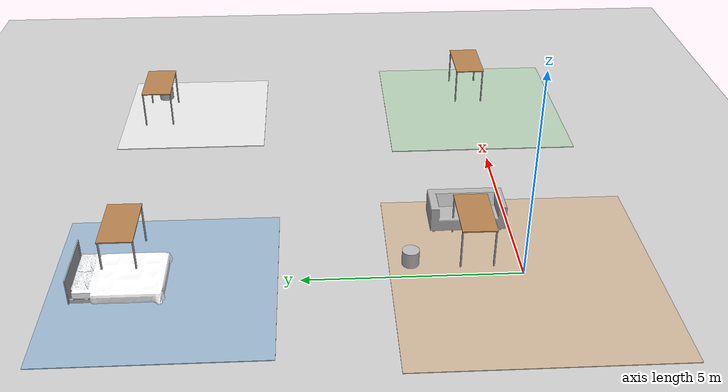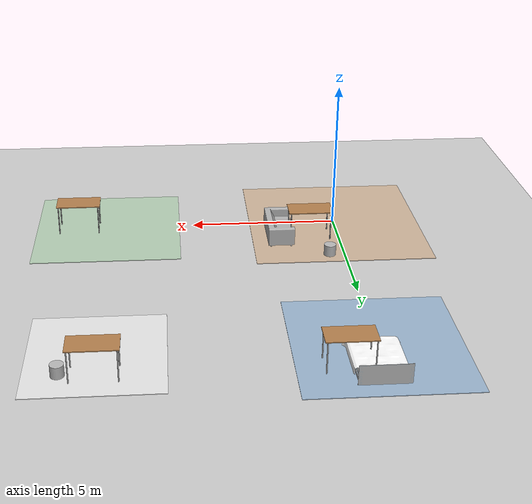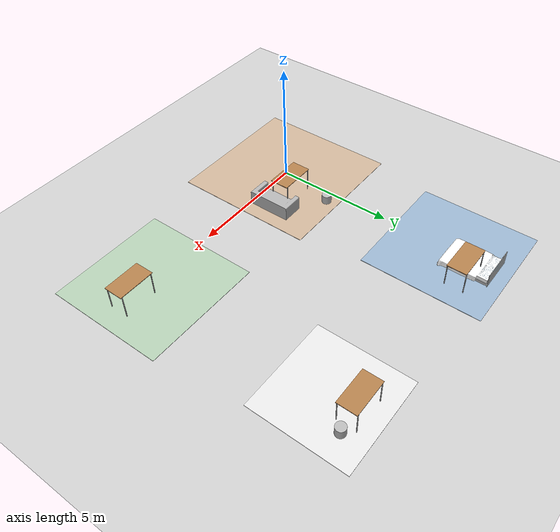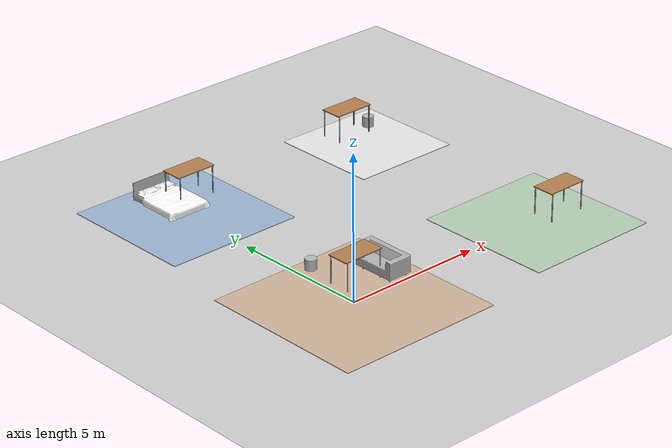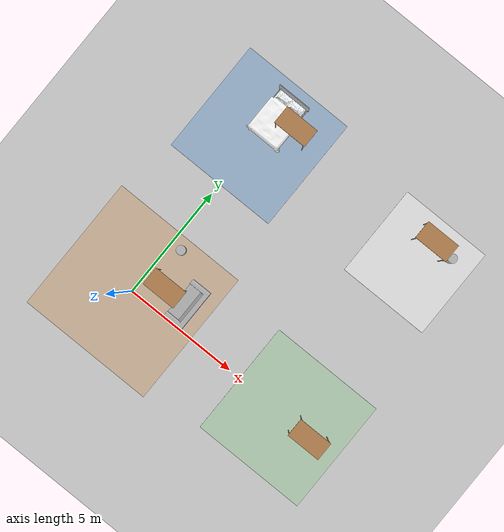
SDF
<sdf version="1.7">
 <world name="EnhancedWorld">
  <gravity>0 0 -9.81</gravity>
  <physics type="ode">
   <max_step_size>0.001</max_step_size>
   <real_time_factor>1</real_time_factor>
   <real_time_update_rate>1000</real_time_update_rate>
  </physics>
  <scene><ambient>0.5 0.5 0.5 1</ambient><shadows>true</shadows></scene>
  <include><uri>model://sun</uri></include>
  <include><uri>model://ground_plane</uri></include>
  <model name="LivingRoom">
   <static>true</static>
   <link name="structure">
    <collision name="floor_collision">
     <geometry><box><size>6 6 0.1</size></box></geometry>
     <pose>0 0 -0.05 0 0 0</pose>
    </collision>
    <visual name="floor_visual">
     <geometry><box><size>6 6 0.1</size></box></geometry>
     <pose>0 0 -0.05 0 0 0</pose>
     <material><ambient>0.8 0.7 0.6 1</ambient></material>
    </visual>
   </link>
  </model>
  <model name="Kitchen">
   <static>true</static>
   <pose>8 0 0 0 0 0</pose>
   <link name="structure">
    <collision name="floor_collision">
     <geometry><box><size>5 5 0.1</size></box></geometry>
     <pose>0 0 -0.05 0 0 0</pose>
    </collision>
    <visual name="floor_visual">
     <geometry><box><size>5 5 0.1</size></box></geometry>
     <pose>0 0 -0.05 0 0 0</pose>
     <material><ambient>0.7 0.8 0.7 1</ambient></material>
    </visual>
   </link>
  </model>
  <model name="Bedroom">
   <static>true</static>
   <pose>0 8 0 0 0 0</pose>
   <link name="structure">
    <collision name="floor_collision">
     <geometry><box><size>5 5 0.1</size></box></geometry>
     <pose>0 0 -0.05 0 0 0</pose>
    </collision>
    <visual name="floor_visual">
     <geometry><box><size>5 5 0.1</size></box></geometry>
     <pose>0 0 -0.05 0 0 0</pose>
     <material><ambient>0.6 0.7 0.8 1</ambient></material>
    </visual>
   </link>
  </model>
  <model name="Office">
   <static>true</static>
   <pose>8 8 0 0 0 0</pose>
   <link name="structure">
    <collision name="floor_collision">
     <geometry><box><size>4 4 0.1</size></box></geometry>
     <pose>0 0 -0.05 0 0 0</pose>
    </collision>
    <visual name="floor_visual">
     <geometry><box><size>4 4 0.1</size></box></geometry>
     <pose>0 0 -0.05 0 0 0</pose>
     <material><ambient>0.9 0.9 0.9 1</ambient></material>
    </visual>
   </link>
  </model>
  <include><uri>model://table</uri><pose>1 1 0 0 0 0</pose></include>
  <include><uri>model://sofa</uri><pose>2 1 0 0 0 0</pose></include>
  <include><uri>model://plant</uri><pose>0.5 2.5 0 0 0 0</pose></include>
  <include><uri>model://table</uri><pose>9 0 0 0 0 0</pose></include>
  <include><uri>model://bed</uri><pose>0 9 0 0 0 0</pose></include>
  <include><uri>model://table</uri><pose>1 9 0 0 0 0</pose></include>
  <include><uri>model://table</uri><pose>8 9 0 0 0 0</pose></include>
  <include><uri>model://plant</uri><pose>9 9 0 0 0 0</pose></include>
 </world>
</sdf>

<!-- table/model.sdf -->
<sdf version="1.5">
  <model name="table">
    <static>true</static>
    <link name="link">
      <collision name="surface">
        <pose>0 0 1.0 0 0 0</pose>
        <geometry>
          <box>
            <size>1.5 0.8 0.03</size>
          </box>
        </geometry>
        <surface>
          <friction>
            <ode>
              <mu>0.6</mu>
              <mu2>0.6</mu2>
            </ode>
          </friction>
        </surface>
      </collision>
      <visual name="visual1">
        <pose>0 0 1.0 0 0 0</pose>
        <geometry>
          <box>
            <size>1.5 0.8 0.03</size>
          </box>
        </geometry>
        <material>
          <script>
            <uri>model://media/materials/scripts/gazebo.material</uri>
            <name>Gazebo/Wood</name>
          </script>
        </material>
      </visual>
      <collision name="front_left_leg">
        <pose>0.68 0.38 0.5 0 0 0</pose>
        <geometry>
          <cylinder>
            <radius>0.02</radius>
            <length>1.0</length>
          </cylinder>
        </geometry>
      </collision>
      <visual name="front_left_leg">
        <pose>0.68 0.38 0.5 0 0 0</pose>
        <geometry>
          <cylinder>
            <radius>0.02</radius>
            <length>1.0</length>
          </cylinder>
        </geometry>
        <material>
          <script>
            <uri>model://media/materials/scripts/gazebo.material</uri>
            <name>Gazebo/Grey</name>
          </script>
        </material>
      </visual>
      <collision name="front_right_leg">
        <pose>0.68 -0.38 0.5 0 0 0</pose>
        <geometry>
          <cylinder>
            <radius>0.02</radius>
            <length>1.0</length>
          </cylinder>
        </geometry>
      </collision>
      <visual name="front_right_leg">
        <pose>0.68 -0.38 0.5 0 0 0</pose>
        <geometry>
          <cylinder>
            <radius>0.02</radius>
            <length>1.0</length>
          </cylinder>
        </geometry>
        <material>
          <script>
            <uri>model://media/materials/scripts/gazebo.material</uri>
            <name>Gazebo/Grey</name>
          </script>
        </material>
      </visual>
      <collision name="back_right_leg">
        <pose>-0.68 -0.38 0.5 0 0 0</pose>
        <geometry>
          <cylinder>
            <radius>0.02</radius>
            <length>1.0</length>
          </cylinder>
        </geometry>
      </collision>
      <visual name="back_right_leg">
        <pose>-0.68 -0.38 0.5 0 0 0</pose>
        <geometry>
          <cylinder>
            <radius>0.02</radius>
            <length>1.0</length>
          </cylinder>
        </geometry>
        <material>
          <script>
            <uri>model://media/materials/scripts/gazebo.material</uri>
            <name>Gazebo/Grey</name>
          </script>
        </material>
      </visual>
      <collision name="back_left_leg">
        <pose>-0.68 0.38 0.5 0 0 0</pose>
        <geometry>
          <cylinder>
            <radius>0.02</radius>
            <length>1.0</length>
          </cylinder>
        </geometry>
      </collision>
      <visual name="back_left_leg">
        <pose>-0.68 0.38 0.5 0 0 0</pose>
        <geometry>
          <cylinder>
            <radius>0.02</radius>
            <length>1.0</length>
          </cylinder>
        </geometry>
        <material>
          <script>
            <uri>model://media/materials/scripts/gazebo.material</uri>
            <name>Gazebo/Grey</name>
          </script>
        </material>
      </visual>
    </link>
  </model>
</sdf>

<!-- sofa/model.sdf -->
<sdf version='1.6'>
  <model name='sofa'>
    <link name='link_0'>
      <pose frame=''>0 0 0 0 -0 0</pose>
      <inertial>
        <mass>20</mass>
        <pose frame=''>0.05 0.02 0.35 0 0 0</pose>
        <inertia>
          <ixx>6.5189973924</ixx>
          <ixy>0</ixy>
          <ixz>0</ixz>
          <iyy>2.3789990484</iyy>
          <iyz>0</iyz>
          <izz>7.0229971908</izz>
        </inertia>
      </inertial>
      <visual name='visual'>
        <pose frame=''>0 0 0 0 -0 0</pose>
        <geometry>
          <mesh>
            <uri>file://isr-testbed/sofa/sofa.dae</uri>
            <scale>1 1 1</scale>
          </mesh>
        </geometry>
        <material>
          <lighting>1</lighting>
          <script>
            <uri>file://media/materials/scripts/gazebo.material</uri>
            <name>Gazebo/DepthMapVS</name>
          </script>
          <ambient>0.3 0.3 0.3 1</ambient>
          <diffuse>0.7 0.7 0.7 1</diffuse>
          <specular>0.01 0.01 0.01 1</specular>
          <emissive>0 0 0 1</emissive>
        </material>
        <cast_shadows>1</cast_shadows>
        <transparency>0</transparency>
      </visual>
      <collision name='collision'>
        <laser_retro>0</laser_retro>
        <max_contacts>10</max_contacts>
        <pose frame=''>0.05 0 0.2 0 0 0</pose>
        <geometry>
          <box>
            <size>0.93 1.83 0.37</size>
          </box>
        </geometry>
        <surface>
          <friction>
            <ode>
              <mu>1</mu>
              <mu2>1</mu2>
              <fdir1>0 0 0</fdir1>
              <slip1>0</slip1>
              <slip2>0</slip2>
            </ode>
            <torsional>
              <coefficient>1</coefficient>
              <patch_radius>0</patch_radius>
              <surface_radius>0</surface_radius>
              <use_patch_radius>1</use_patch_radius>
              <ode>
                <slip>0</slip>
              </ode>
            </torsional>
          </friction>
          <bounce>
            <restitution_coefficient>0</restitution_coefficient>
            <threshold>1e+06</threshold>
          </bounce>
          <contact>
            <collide_without_contact>0</collide_without_contact>
            <collide_without_contact_bitmask>1</collide_without_contact_bitmask>
            <collide_bitmask>1</collide_bitmask>
            <ode>
              <soft_cfm>0</soft_cfm>
              <soft_erp>0.2</soft_erp>
              <kp>1e+13</kp>
              <kd>1</kd>
              <max_vel>0.01</max_vel>
              <min_depth>0</min_depth>
            </ode>
            <bullet>
              <split_impulse>1</split_impulse>
              <split_impulse_penetration_threshold>-0.01</split_impulse_penetration_threshold>
              <soft_cfm>0</soft_cfm>
              <soft_erp>0.2</soft_erp>
              <kp>1e+13</kp>
              <kd>1</kd>
            </bullet>
          </contact>
        </surface>
      </collision>
      <collision name='collision_back'>
        <laser_retro>0</laser_retro>
        <max_contacts>10</max_contacts>
        <pose frame=''>0.35 0 0.5 0 0 0</pose>
        <geometry>
          <box>
            <size>0.3 1.83 0.5</size>
          </box>
        </geometry>
        <surface>
          <friction>
            <ode>
              <mu>1</mu>
              <mu2>1</mu2>
              <fdir1>0 0 0</fdir1>
              <slip1>0</slip1>
              <slip2>0</slip2>
            </ode>
            <torsional>
              <coefficient>1</coefficient>
              <patch_radius>0</patch_radius>
              <surface_radius>0</surface_radius>
              <use_patch_radius>1</use_patch_radius>
              <ode>
                <slip>0</slip>
              </ode>
            </torsional>
          </friction>
          <bounce>
            <restitution_coefficient>0</restitution_coefficient>
            <threshold>1e+06</threshold>
          </bounce>
          <contact>
            <collide_without_contact>0</collide_without_contact>
            <collide_without_contact_bitmask>1</collide_without_contact_bitmask>
            <collide_bitmask>1</collide_bitmask>
            <ode>
              <soft_cfm>0</soft_cfm>
              <soft_erp>0.2</soft_erp>
              <kp>1e+13</kp>
              <kd>1</kd>
              <max_vel>0.01</max_vel>
              <min_depth>0</min_depth>
            </ode>
            <bullet>
              <split_impulse>1</split_impulse>
              <split_impulse_penetration_threshold>-0.01</split_impulse_penetration_threshold>
              <soft_cfm>0</soft_cfm>
              <soft_erp>0.2</soft_erp>
              <kp>1e+13</kp>
              <kd>1</kd>
            </bullet>
          </contact>
        </surface>
      </collision>
      <collision name='collision_arm_left'>
        <laser_retro>0</laser_retro>
        <max_contacts>10</max_contacts>
        <pose frame=''>0 -0.8 0.5 0 0 0</pose>
        <geometry>
          <box>
            <size>0.8 0.25 0.5</size>
          </box>
        </geometry>
        <surface>
          <friction>
            <ode>
              <mu>1</mu>
              <mu2>1</mu2>
              <fdir1>0 0 0</fdir1>
              <slip1>0</slip1>
              <slip2>0</slip2>
            </ode>
            <torsional>
              <coefficient>1</coefficient>
              <patch_radius>0</patch_radius>
              <surface_radius>0</surface_radius>
              <use_patch_radius>1</use_patch_radius>
              <ode>
                <slip>0</slip>
              </ode>
            </torsional>
          </friction>
          <bounce>
            <restitution_coefficient>0</restitution_coefficient>
            <threshold>1e+06</threshold>
          </bounce>
          <contact>
            <collide_without_contact>0</collide_without_contact>
            <collide_without_contact_bitmask>1</collide_without_contact_bitmask>
            <collide_bitmask>1</collide_bitmask>
            <ode>
              <soft_cfm>0</soft_cfm>
              <soft_erp>0.2</soft_erp>
              <kp>1e+13</kp>
              <kd>1</kd>
              <max_vel>0.01</max_vel>
              <min_depth>0</min_depth>
            </ode>
            <bullet>
              <split_impulse>1</split_impulse>
              <split_impulse_penetration_threshold>-0.01</split_impulse_penetration_threshold>
              <soft_cfm>0</soft_cfm>
              <soft_erp>0.2</soft_erp>
              <kp>1e+13</kp>
              <kd>1</kd>
            </bullet>
          </contact>
        </surface>
      </collision>
      <collision name='collision_arm_right'>
        <laser_retro>0</laser_retro>
        <max_contacts>10</max_contacts>
        <pose frame=''>0 0.8 0.5 0 0 0</pose>
        <geometry>
          <box>
            <size>0.8 0.25 0.5</size>
          </box>
        </geometry>
        <surface>
          <friction>
            <ode>
              <mu>1</mu>
              <mu2>1</mu2>
              <fdir1>0 0 0</fdir1>
              <slip1>0</slip1>
              <slip2>0</slip2>
            </ode>
            <torsional>
              <coefficient>1</coefficient>
              <patch_radius>0</patch_radius>
              <surface_radius>0</surface_radius>
              <use_patch_radius>1</use_patch_radius>
              <ode>
                <slip>0</slip>
              </ode>
            </torsional>
          </friction>
          <bounce>
            <restitution_coefficient>0</restitution_coefficient>
            <threshold>1e+06</threshold>
          </bounce>
          <contact>
            <collide_without_contact>0</collide_without_contact>
            <collide_without_contact_bitmask>1</collide_without_contact_bitmask>
            <collide_bitmask>1</collide_bitmask>
            <ode>
              <soft_cfm>0</soft_cfm>
              <soft_erp>0.2</soft_erp>
              <kp>1e+13</kp>
              <kd>1</kd>
              <max_vel>0.01</max_vel>
              <min_depth>0</min_depth>
            </ode>
            <bullet>
              <split_impulse>1</split_impulse>
              <split_impulse_penetration_threshold>-0.01</split_impulse_penetration_threshold>
              <soft_cfm>0</soft_cfm>
              <soft_erp>0.2</soft_erp>
              <kp>1e+13</kp>
              <kd>1</kd>
            </bullet>
          </contact>
        </surface>
      </collision>
    </link>
    <static>0</static>
    <allow_auto_disable>1</allow_auto_disable>
  </model>
</sdf>

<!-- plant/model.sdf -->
<sdf version="1.6">
  <model name="robotics_testlabs/plant">
    <link name="1_link">
      <collision name="1_col">
        <geometry>
          <cylinder>
            <length>0.375</length>
            <radius>0.2</radius>
          </cylinder>
        </geometry>
      </collision>
      <visual name="1_vis">
        <geometry>
          <cylinder>
            <length>0.375</length>
            <radius>0.2</radius>
          </cylinder>
        </geometry>
      </visual>
      <pose>0 0 0.1875 0 0 0</pose>
    </link>
    <static>true</static>
  </model>
</sdf>

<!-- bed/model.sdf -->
<sdf version='1.6'>
  <model name='bed'>
    <link name='link_0'>
      <pose frame=''>0 0 0 0 -0 0</pose>
      <inertial>
        <pose frame=''>0.2 0 0 0 -0 0</pose>
        <mass>30</mass>
        <inertia>
          <ixx>12.9999948</ixx>
          <ixy>0</ixy>
          <ixz>0</ixz>
          <iyy>7.29999708</iyy>
          <iyz>0</iyz>
          <izz>18.4999926</izz>
        </inertia>
      </inertial>
      <visual name='visual'>
        <pose frame=''>-1.35 -8 -0.3 0 -0 -0</pose>
        <geometry>
          <mesh>
            <uri>file://isr-testbed/bed/bed.dae</uri>
            <scale>1 1 1</scale>
          </mesh>
        </geometry>
        <cast_shadows>1</cast_shadows>
        <transparency>0</transparency>
      </visual>
      <collision name='collision'>
        <laser_retro>0</laser_retro>
        <max_contacts>10</max_contacts>
        <pose frame=''>0.2 0 0 0 -0 0</pose>
        <geometry>
          <box>
            <size>1.6 2.2 0.6</size>
          </box>
        </geometry>
        <surface>
          <friction>
            <ode>
              <mu>1</mu>
              <mu2>1</mu2>
              <fdir1>0 0 0</fdir1>
              <slip1>0</slip1>
              <slip2>0</slip2>
            </ode>
            <torsional>
              <coefficient>1</coefficient>
              <patch_radius>0</patch_radius>
              <surface_radius>0</surface_radius>
              <use_patch_radius>1</use_patch_radius>
              <ode>
                <slip>0</slip>
              </ode>
            </torsional>
          </friction>
          <bounce>
            <restitution_coefficient>0</restitution_coefficient>
            <threshold>1e+06</threshold>
          </bounce>
          <contact>
            <collide_without_contact>0</collide_without_contact>
            <collide_without_contact_bitmask>1</collide_without_contact_bitmask>
            <collide_bitmask>1</collide_bitmask>
            <ode>
              <soft_cfm>0</soft_cfm>
              <soft_erp>0.2</soft_erp>
              <kp>1e+13</kp>
              <kd>1</kd>
              <max_vel>0.01</max_vel>
              <min_depth>0</min_depth>
            </ode>
            <bullet>
              <split_impulse>1</split_impulse>
              <split_impulse_penetration_threshold>-0.01</split_impulse_penetration_threshold>
              <soft_cfm>0</soft_cfm>
              <soft_erp>0.2</soft_erp>
              <kp>1e+13</kp>
              <kd>1</kd>
            </bullet>
          </contact>
        </surface>
      </collision>
    </link>
    <static>0</static> <!-- center has an offset so will not behave properly if this is set to 0 -->
    <allow_auto_disable>1</allow_auto_disable>
  </model>
</sdf>
